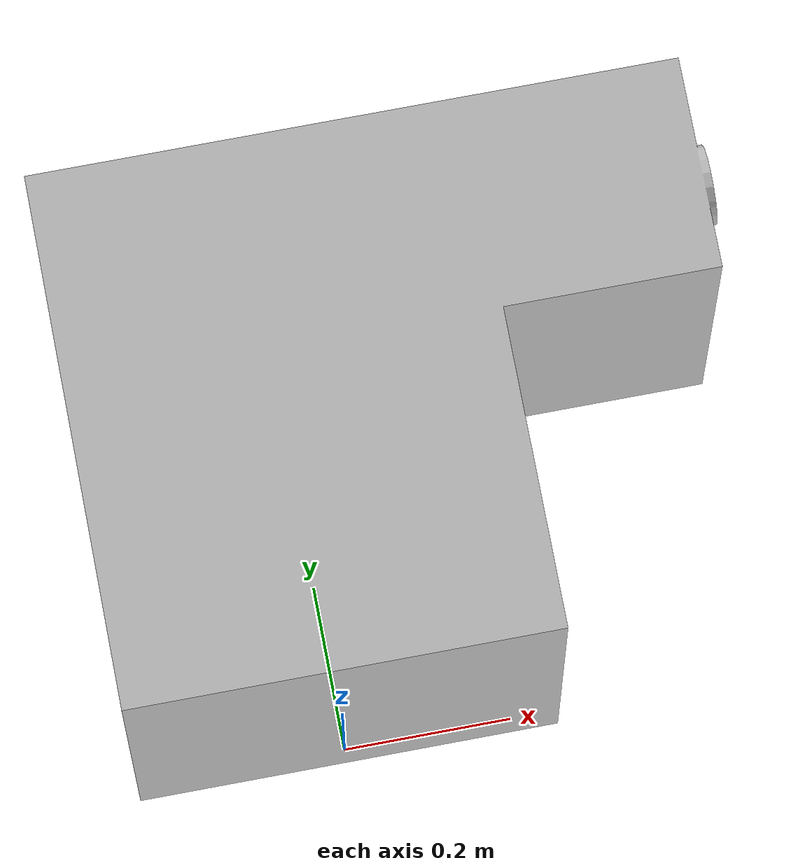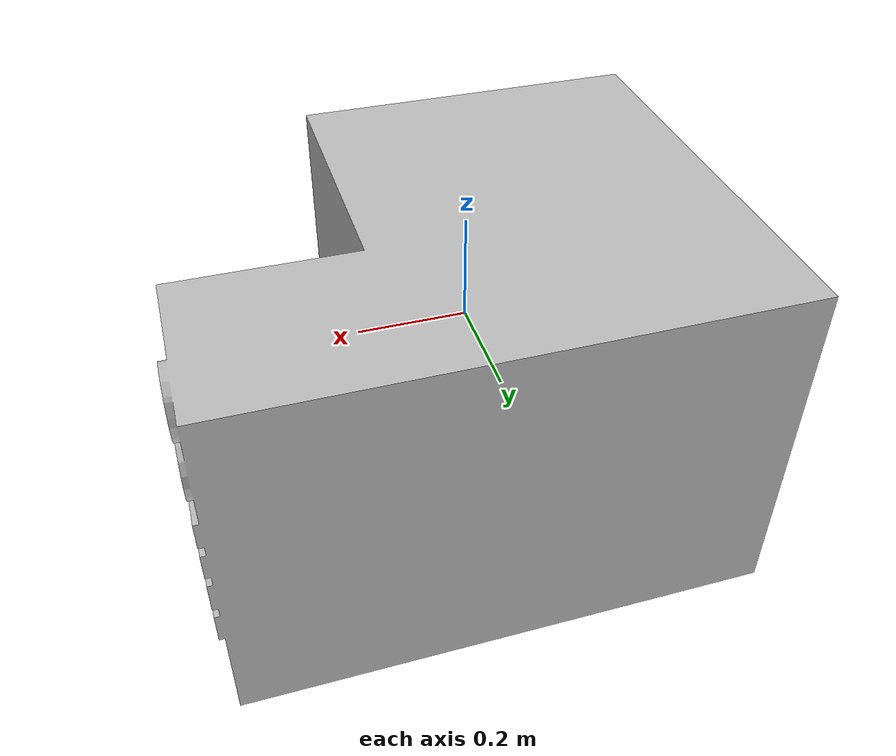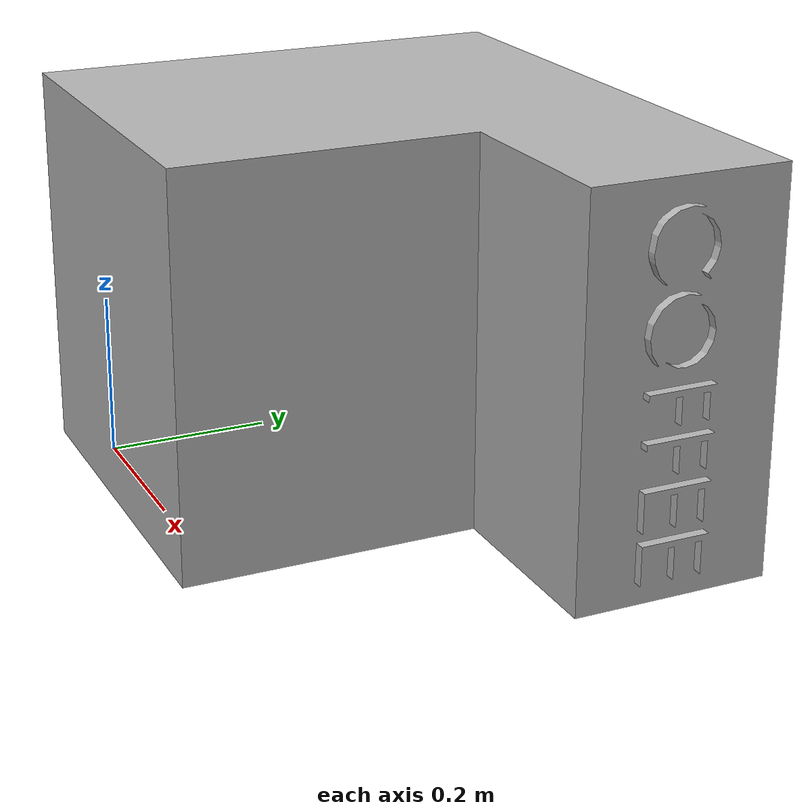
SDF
<sdf version='1.7'>
  <model name='Coffee__machine_assy'>
    <link name='base_link'>
      <inertial>
        <pose>0.068679 0.179709 -0.349357 0 -0 0</pose>
        <mass>196.78</mass>
        <inertia>
          <ixx>10.9085</ixx>
          <ixy>0.000940711</ixy>
          <ixz>1.9918</ixz>
          <iyy>14.3695</iyy>
          <iyz>-0.000340794</iyz>
          <izz>11.9237</izz>
        </inertia>
      </inertial>
      <collision name='base_link_collision'>
        <pose>0 0 0 0 -0 0</pose>
        <geometry>
          <mesh>
            <scale>1 1 1</scale>
            <uri>model://Coffee__machine_assy/meshes/base_link.STL</uri>
          </mesh>
        </geometry>
      </collision>
      <visual name='base_link_visual'>
        <pose>0 0 0 0 -0 0</pose>
        <geometry>
          <mesh>
            <scale>1 1 1</scale>
            <uri>model://Coffee__machine_assy/meshes/base_link.STL</uri>
          </mesh>
        </geometry>
      </visual>
    </link>
  </model>
</sdf>
